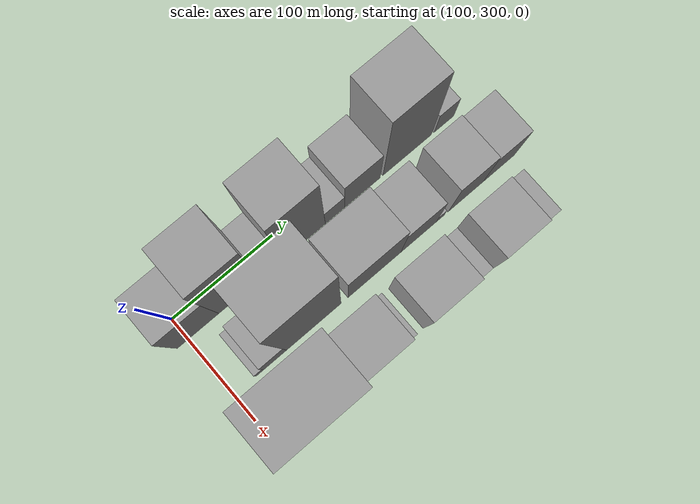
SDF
<sdf version="1.6">
 <world name="default">
  <model name="building_22">
   <static>1</static>
   <pose>100.0000 309.7758 0 0.000000 0.000000 0.000000</pose>
   <link name="link">
    <pose>0 0 37.50 0 0 0</pose>
    <collision name="collision"><geometry><box><size>40.0000 40.8084 75.0000</size></box></geometry></collision>
    <visual name="visual">
     <cast_shadows>0</cast_shadows>
     <geometry><box><size>40.0000 40.8084 75.0000</size></box></geometry>
     <material>
      <script>
       <uri>model://grey_wall/materials/scripts</uri>
       <uri>model://grey_wall/materials/textures</uri>
       <name>vrc/grey_wall</name>
      </script>
     </material>
    </visual>
   </link>
  </model>
  <model name="building_23">
   <static>1</static>
   <pose>100.0000 351.2639 0 0.000000 0.000000 0.000000</pose>
   <link name="link">
    <pose>0 0 63.00 0 0 0</pose>
    <collision name="collision"><geometry><box><size>40.0000 42.1678 126.0000</size></box></geometry></collision>
    <visual name="visual">
     <cast_shadows>0</cast_shadows>
     <geometry><box><size>40.0000 42.1678 126.0000</size></box></geometry>
     <material>
      <script>
       <uri>model://grey_wall/materials/scripts</uri>
       <uri>model://grey_wall/materials/textures</uri>
       <name>vrc/grey_wall</name>
      </script>
     </material>
    </visual>
   </link>
  </model>
  <model name="building_24">
   <static>1</static>
   <pose>100.0000 382.6859 0 0.000000 0.000000 0.000000</pose>
   <link name="link">
    <pose>0 0 18.00 0 0 0</pose>
    <collision name="collision"><geometry><box><size>40.0000 20.6761 36.0000</size></box></geometry></collision>
    <visual name="visual">
     <cast_shadows>0</cast_shadows>
     <geometry><box><size>40.0000 20.6761 36.0000</size></box></geometry>
     <material>
      <script>
       <uri>model://grey_wall/materials/scripts</uri>
       <uri>model://grey_wall/materials/textures</uri>
       <name>vrc/grey_wall</name>
      </script>
     </material>
    </visual>
   </link>
  </model>
  <model name="building_25">
   <static>1</static>
   <pose>100.0000 414.9001 0 0.000000 0.000000 0.000000</pose>
   <link name="link">
    <pose>0 0 63.00 0 0 0</pose>
    <collision name="collision"><geometry><box><size>40.0000 43.7524 126.0000</size></box></geometry></collision>
    <visual name="visual">
     <cast_shadows>0</cast_shadows>
     <geometry><box><size>40.0000 43.7524 126.0000</size></box></geometry>
     <material>
      <script>
       <uri>model://grey_wall/materials/scripts</uri>
       <uri>model://grey_wall/materials/textures</uri>
       <name>vrc/grey_wall</name>
      </script>
     </material>
    </visual>
   </link>
  </model>
  <model name="building_26">
   <static>1</static>
   <pose>100.0000 446.7177 0 0.000000 0.000000 0.000000</pose>
   <link name="link">
    <pose>0 0 18.00 0 0 0</pose>
    <collision name="collision"><geometry><box><size>40.0000 19.8828 36.0000</size></box></geometry></collision>
    <visual name="visual">
     <cast_shadows>0</cast_shadows>
     <geometry><box><size>40.0000 19.8828 36.0000</size></box></geometry>
     <material>
      <script>
       <uri>model://grey_wall/materials/scripts</uri>
       <uri>model://grey_wall/materials/textures</uri>
       <name>vrc/grey_wall</name>
      </script>
     </material>
    </visual>
   </link>
  </model>
  <model name="building_27">
   <static>1</static>
   <pose>100.0000 474.7866 0 0.000000 0.000000 0.000000</pose>
   <link name="link">
    <pose>0 0 31.50 0 0 0</pose>
    <collision name="collision"><geometry><box><size>40.0000 36.2548 63.0000</size></box></geometry></collision>
    <visual name="visual">
     <cast_shadows>0</cast_shadows>
     <geometry><box><size>40.0000 36.2548 63.0000</size></box></geometry>
     <material>
      <script>
       <uri>model://grey_wall/materials/scripts</uri>
       <uri>model://grey_wall/materials/textures</uri>
       <name>vrc/grey_wall</name>
      </script>
     </material>
    </visual>
   </link>
  </model>
  <model name="building_28">
   <static>1</static>
   <pose>100.0000 521.2659 0 0.000000 0.000000 0.000000</pose>
   <link name="link">
    <pose>0 0 64.50 0 0 0</pose>
    <collision name="collision"><geometry><box><size>40.0000 50.7038 129.0000</size></box></geometry></collision>
    <visual name="visual">
     <cast_shadows>0</cast_shadows>
     <geometry><box><size>40.0000 50.7038 129.0000</size></box></geometry>
     <material>
      <script>
       <uri>model://grey_wall/materials/scripts</uri>
       <uri>model://grey_wall/materials/textures</uri>
       <name>vrc/grey_wall</name>
      </script>
     </material>
    </visual>
   </link>
  </model>
  <model name="building_29">
   <static>1</static>
   <pose>100.0000 559.9831 0 0.000000 0.000000 0.000000</pose>
   <link name="link">
    <pose>0 0 19.50 0 0 0</pose>
    <collision name="collision"><geometry><box><size>40.0000 20.7306 39.0000</size></box></geometry></collision>
    <visual name="visual">
     <cast_shadows>0</cast_shadows>
     <geometry><box><size>40.0000 20.7306 39.0000</size></box></geometry>
     <material>
      <script>
       <uri>model://grey_wall/materials/scripts</uri>
       <uri>model://grey_wall/materials/textures</uri>
       <name>vrc/grey_wall</name>
      </script>
     </material>
    </visual>
   </link>
  </model>
  <model name="building_55">
   <static>1</static>
   <pose>155.0000 325.5950 0 0.000000 0.000000 0.000000</pose>
   <link name="link">
    <pose>0 0 9.00 0 0 0</pose>
    <collision name="collision"><geometry><box><size>40.0000 7.6686 18.0000</size></box></geometry></collision>
    <visual name="visual">
     <cast_shadows>0</cast_shadows>
     <geometry><box><size>40.0000 7.6686 18.0000</size></box></geometry>
     <material>
      <script>
       <uri>model://grey_wall/materials/scripts</uri>
       <uri>model://grey_wall/materials/textures</uri>
       <name>vrc/grey_wall</name>
      </script>
     </material>
    </visual>
   </link>
  </model>
  <model name="building_56">
   <static>1</static>
   <pose>155.0000 340.5344 0 0.000000 0.000000 0.000000</pose>
   <link name="link">
    <pose>0 0 19.50 0 0 0</pose>
    <collision name="collision"><geometry><box><size>40.0000 22.2103 39.0000</size></box></geometry></collision>
    <visual name="visual">
     <cast_shadows>0</cast_shadows>
     <geometry><box><size>40.0000 22.2103 39.0000</size></box></geometry>
     <material>
      <script>
       <uri>model://grey_wall/materials/scripts</uri>
       <uri>model://grey_wall/materials/textures</uri>
       <name>vrc/grey_wall</name>
      </script>
     </material>
    </visual>
   </link>
  </model>
  <model name="building_57">
   <static>1</static>
   <pose>155.0000 378.6704 0 0.000000 0.000000 0.000000</pose>
   <link name="link">
    <pose>0 0 88.50 0 0 0</pose>
    <collision name="collision"><geometry><box><size>40.0000 54.0616 177.0000</size></box></geometry></collision>
    <visual name="visual">
     <cast_shadows>0</cast_shadows>
     <geometry><box><size>40.0000 54.0616 177.0000</size></box></geometry>
     <material>
      <script>
       <uri>model://grey_wall/materials/scripts</uri>
       <uri>model://grey_wall/materials/textures</uri>
       <name>vrc/grey_wall</name>
      </script>
     </material>
    </visual>
   </link>
  </model>
  <model name="building_58">
   <static>1</static>
   <pose>155.0000 439.4594 0 0.000000 0.000000 0.000000</pose>
   <link name="link">
    <pose>0 0 45.00 0 0 0</pose>
    <collision name="collision"><geometry><box><size>40.0000 53.5163 90.0000</size></box></geometry></collision>
    <visual name="visual">
     <cast_shadows>0</cast_shadows>
     <geometry><box><size>40.0000 53.5163 90.0000</size></box></geometry>
     <material>
      <script>
       <uri>model://grey_wall/materials/scripts</uri>
       <uri>model://grey_wall/materials/textures</uri>
       <name>vrc/grey_wall</name>
      </script>
     </material>
    </visual>
   </link>
  </model>
  <model name="building_59">
   <static>1</static>
   <pose>155.0000 484.5531 0 0.000000 0.000000 0.000000</pose>
   <link name="link">
    <pose>0 0 34.50 0 0 0</pose>
    <collision name="collision"><geometry><box><size>40.0000 36.6712 69.0000</size></box></geometry></collision>
    <visual name="visual">
     <cast_shadows>0</cast_shadows>
     <geometry><box><size>40.0000 36.6712 69.0000</size></box></geometry>
     <material>
      <script>
       <uri>model://grey_wall/materials/scripts</uri>
       <uri>model://grey_wall/materials/textures</uri>
       <name>vrc/grey_wall</name>
      </script>
     </material>
    </visual>
   </link>
  </model>
  <model name="building_60">
   <static>1</static>
   <pose>155.0000 507.0580 0 0.000000 0.000000 0.000000</pose>
   <link name="link">
    <pose>0 0 9.00 0 0 0</pose>
    <collision name="collision"><geometry><box><size>40.0000 8.3384 18.0000</size></box></geometry></collision>
    <visual name="visual">
     <cast_shadows>0</cast_shadows>
     <geometry><box><size>40.0000 8.3384 18.0000</size></box></geometry>
     <material>
      <script>
       <uri>model://grey_wall/materials/scripts</uri>
       <uri>model://grey_wall/materials/textures</uri>
       <name>vrc/grey_wall</name>
      </script>
     </material>
    </visual>
   </link>
  </model>
  <model name="building_61">
   <static>1</static>
   <pose>155.0000 533.3430 0 0.000000 0.000000 0.000000</pose>
   <link name="link">
    <pose>0 0 36.00 0 0 0</pose>
    <collision name="collision"><geometry><box><size>40.0000 36.2317 72.0000</size></box></geometry></collision>
    <visual name="visual">
     <cast_shadows>0</cast_shadows>
     <geometry><box><size>40.0000 36.2317 72.0000</size></box></geometry>
     <material>
      <script>
       <uri>model://grey_wall/materials/scripts</uri>
       <uri>model://grey_wall/materials/textures</uri>
       <name>vrc/grey_wall</name>
      </script>
     </material>
    </visual>
   </link>
  </model>
  <model name="building_62">
   <static>1</static>
   <pose>155.0000 568.1721 0 0.000000 0.000000 0.000000</pose>
   <link name="link">
    <pose>0 0 31.50 0 0 0</pose>
    <collision name="collision"><geometry><box><size>40.0000 33.4264 63.0000</size></box></geometry></collision>
    <visual name="visual">
     <cast_shadows>0</cast_shadows>
     <geometry><box><size>40.0000 33.4264 63.0000</size></box></geometry>
     <material>
      <script>
       <uri>model://grey_wall/materials/scripts</uri>
       <uri>model://grey_wall/materials/textures</uri>
       <name>vrc/grey_wall</name>
      </script>
     </material>
    </visual>
   </link>
  </model>
  <model name="building_88">
   <static>1</static>
   <pose>210.0000 307.0343 0 0.000000 0.000000 0.000000</pose>
   <link name="link">
    <pose>0 0 16.50 0 0 0</pose>
    <collision name="collision"><geometry><box><size>40.0000 18.3470 33.0000</size></box></geometry></collision>
    <visual name="visual">
     <cast_shadows>0</cast_shadows>
     <geometry><box><size>40.0000 18.3470 33.0000</size></box></geometry>
     <material>
      <script>
       <uri>model://grey_wall/materials/scripts</uri>
       <uri>model://grey_wall/materials/textures</uri>
       <name>vrc/grey_wall</name>
      </script>
     </material>
    </visual>
   </link>
  </model>
  <model name="building_89">
   <static>1</static>
   <pose>210.0000 348.9651 0 0.000000 0.000000 0.000000</pose>
   <link name="link">
    <pose>0 0 93.00 0 0 0</pose>
    <collision name="collision"><geometry><box><size>40.0000 65.5148 186.0000</size></box></geometry></collision>
    <visual name="visual">
     <cast_shadows>0</cast_shadows>
     <geometry><box><size>40.0000 65.5148 186.0000</size></box></geometry>
     <material>
      <script>
       <uri>model://grey_wall/materials/scripts</uri>
       <uri>model://grey_wall/materials/textures</uri>
       <name>vrc/grey_wall</name>
      </script>
     </material>
    </visual>
   </link>
  </model>
  <model name="building_90">
   <static>1</static>
   <pose>210.0000 402.8697 0 0.000000 0.000000 0.000000</pose>
   <link name="link">
    <pose>0 0 37.50 0 0 0</pose>
    <collision name="collision"><geometry><box><size>40.0000 42.2943 75.0000</size></box></geometry></collision>
    <visual name="visual">
     <cast_shadows>0</cast_shadows>
     <geometry><box><size>40.0000 42.2943 75.0000</size></box></geometry>
     <material>
      <script>
       <uri>model://grey_wall/materials/scripts</uri>
       <uri>model://grey_wall/materials/textures</uri>
       <name>vrc/grey_wall</name>
      </script>
     </material>
    </visual>
   </link>
  </model>
  <model name="building_91">
   <static>1</static>
   <pose>210.0000 428.4080 0 0.000000 0.000000 0.000000</pose>
   <link name="link">
    <pose>0 0 10.50 0 0 0</pose>
    <collision name="collision"><geometry><box><size>40.0000 8.7823 21.0000</size></box></geometry></collision>
    <visual name="visual">
     <cast_shadows>0</cast_shadows>
     <geometry><box><size>40.0000 8.7823 21.0000</size></box></geometry>
     <material>
      <script>
       <uri>model://grey_wall/materials/scripts</uri>
       <uri>model://grey_wall/materials/textures</uri>
       <name>vrc/grey_wall</name>
      </script>
     </material>
    </visual>
   </link>
  </model>
  <model name="building_92">
   <static>1</static>
   <pose>210.0000 463.2663 0 0.000000 0.000000 0.000000</pose>
   <link name="link">
    <pose>0 0 37.50 0 0 0</pose>
    <collision name="collision"><geometry><box><size>40.0000 44.9342 75.0000</size></box></geometry></collision>
    <visual name="visual">
     <cast_shadows>0</cast_shadows>
     <geometry><box><size>40.0000 44.9342 75.0000</size></box></geometry>
     <material>
      <script>
       <uri>model://grey_wall/materials/scripts</uri>
       <uri>model://grey_wall/materials/textures</uri>
       <name>vrc/grey_wall</name>
      </script>
     </material>
    </visual>
   </link>
  </model>
  <model name="building_93">
   <static>1</static>
   <pose>210.0000 501.3804 0 0.000000 0.000000 0.000000</pose>
   <link name="link">
    <pose>0 0 12.00 0 0 0</pose>
    <collision name="collision"><geometry><box><size>40.0000 11.2941 24.0000</size></box></geometry></collision>
    <visual name="visual">
     <cast_shadows>0</cast_shadows>
     <geometry><box><size>40.0000 11.2941 24.0000</size></box></geometry>
     <material>
      <script>
       <uri>model://grey_wall/materials/scripts</uri>
       <uri>model://grey_wall/materials/textures</uri>
       <name>vrc/grey_wall</name>
      </script>
     </material>
    </visual>
   </link>
  </model>
  <model name="building_94">
   <static>1</static>
   <pose>210.0000 527.0848 0 0.000000 0.000000 0.000000</pose>
   <link name="link">
    <pose>0 0 37.50 0 0 0</pose>
    <collision name="collision"><geometry><box><size>40.0000 40.1147 75.0000</size></box></geometry></collision>
    <visual name="visual">
     <cast_shadows>0</cast_shadows>
     <geometry><box><size>40.0000 40.1147 75.0000</size></box></geometry>
     <material>
      <script>
       <uri>model://grey_wall/materials/scripts</uri>
       <uri>model://grey_wall/materials/textures</uri>
       <name>vrc/grey_wall</name>
      </script>
     </material>
    </visual>
   </link>
  </model>
  <model name="building_95">
   <static>1</static>
   <pose>210.0000 557.8664 0 0.000000 0.000000 0.000000</pose>
   <link name="link">
    <pose>0 0 21.00 0 0 0</pose>
    <collision name="collision"><geometry><box><size>40.0000 21.4484 42.0000</size></box></geometry></collision>
    <visual name="visual">
     <cast_shadows>0</cast_shadows>
     <geometry><box><size>40.0000 21.4484 42.0000</size></box></geometry>
     <material>
      <script>
       <uri>model://grey_wall/materials/scripts</uri>
       <uri>model://grey_wall/materials/textures</uri>
       <name>vrc/grey_wall</name>
      </script>
     </material>
    </visual>
   </link>
  </model>
 </world>
</sdf>
